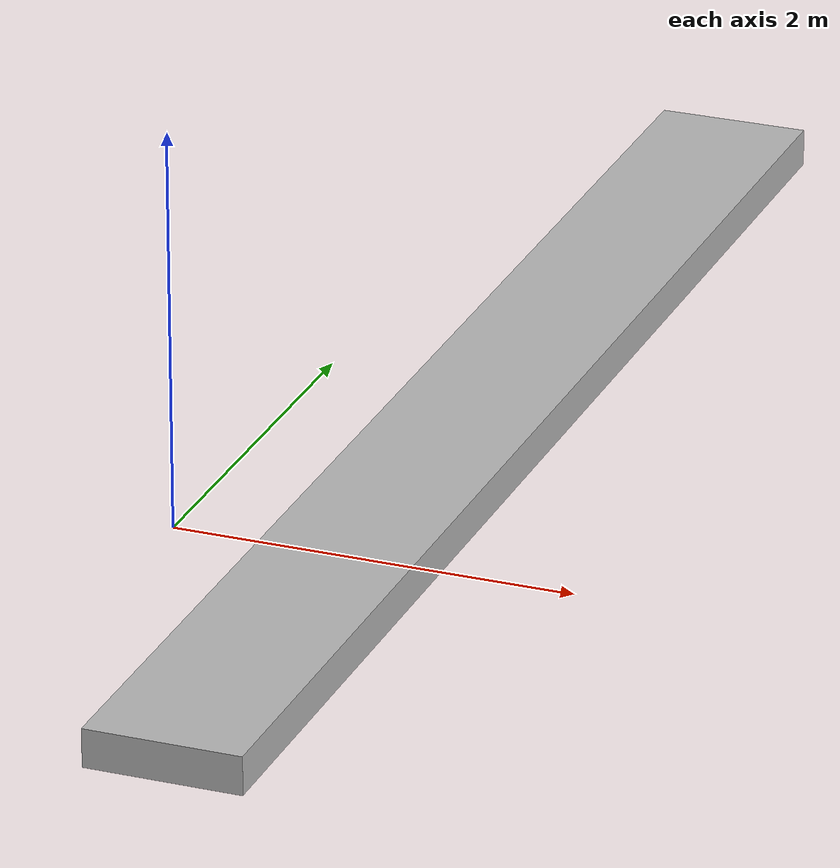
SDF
<?xml version="1.0" ?>
<sdf version="1.6">
    <model name="conveyor_belt">
      <!-- Fixed frame that can be used to refer to the belt's global pose -->
      <model name="conveyor_belt_fixed">
        <static>true</static>
        <pose>1.16 4.2 0.8 0 0 -1.57079</pose>
        <link name="link">
              <inertial>
        <origin xyz="0 0 0.1" rpy="0 0 0"/>
        <mass value="1"/>
        <inertia
          ixx="1.0" ixy="0.0" ixz="0.0"
          iyy="1.0" iyz="0.0"
          izz="1.0"/>
      </inertial>
          <pose>0 0 0 0 0 0</pose>
        </link>
      </model>

      <!-- Moving component that extends and resets a prismatic joint -->
      <model name="conveyor_belt_moving">
        <static>false</static>
        <pose>1.16 -4.12 0.35 0 0 -1.57079</pose>
        <link name="belt">
          <pose>-5 0 0 0 0 0</pose>
          <inertial>
            <inertia>
              <ixx>3.8185</ixx>
              <ixy>0</ixy>
              <ixz>0</ixz>
              <iyy>1781.5</iyy>
              <iyz>0</iyz>
              <izz>1784.72</izz>
            </inertia>
            <mass>100</mass>
          </inertial>
          <visual name="belt_visual">
            <geometry>
              <box>
                <size>7.5 0.75461 0.18862</size>
              </box>
            </geometry>
          </visual>
          <collision name="belt_collision">
            <geometry>
              <box>
                <size>7.5 0.75461 0.18862</size>
              </box>
            </geometry>
            <surface>
              <friction>
                <ode>
                  <mu>1.0</mu>
                  <mu2>1.0</mu2>
                </ode>
                <torsional>
                  <coefficient>1000.0</coefficient>
                  <patch_radius>0.1</patch_radius>
                </torsional>
              </friction>
            </surface>
          </collision>
        </link>
      </model>

      <joint name="belt_joint" type="prismatic">
        <parent>conveyor_belt_fixed::link</parent>
        <child>conveyor_belt_moving::belt</child>
        <axis>
          <xyz>1 0 0</xyz>
          <limit>
            <lower>0</lower>
            <upper>1.0</upper>
          </limit>
        </axis>
      </joint>

      <plugin name="conveyor_belt_plugin" filename="libROSConveyorBeltPlugin.so">
        <robot_namespace>/ariac</robot_namespace>
        <enable_topic>/ariac/conveyor_enable</enable_topic>
        <population_rate_modifier_topic>/ariac/population/rate_modifier</population_rate_modifier_topic>
        <link>conveyor_belt::conveyor_belt_moving::belt</link>
        <power>0</power>
        <update_rate>10</update_rate>
      </plugin>
    </model>
</sdf>
